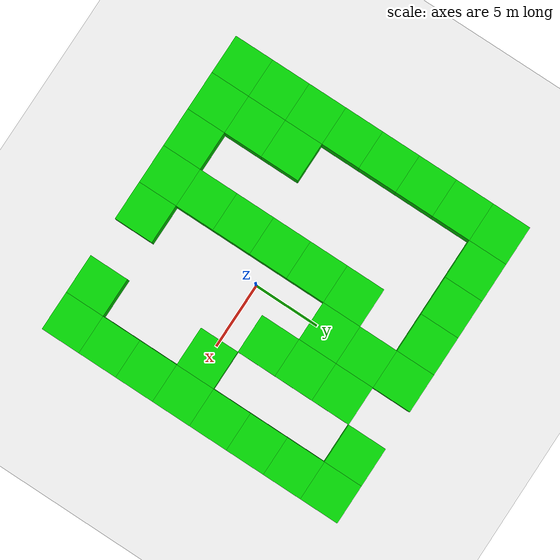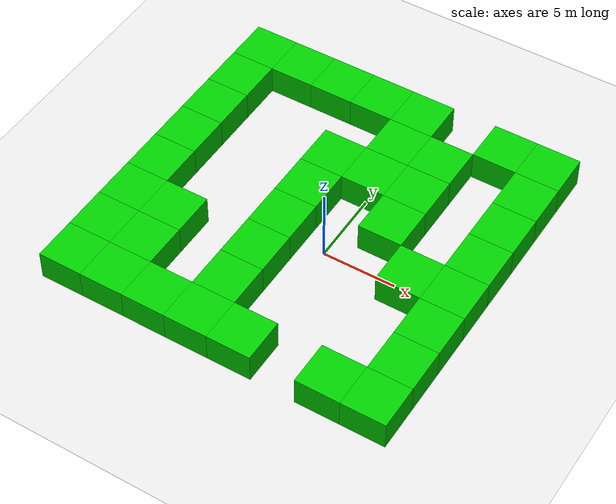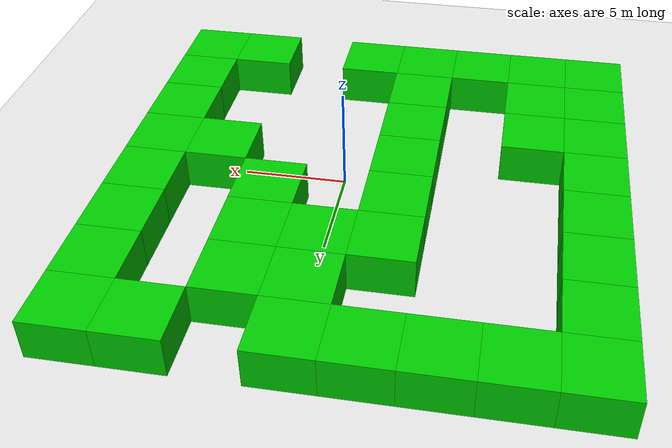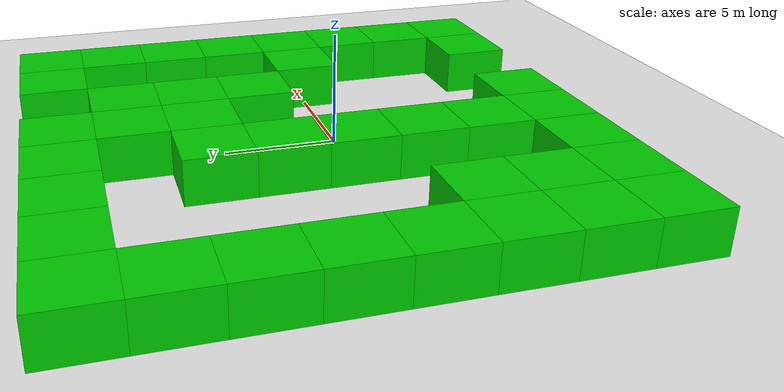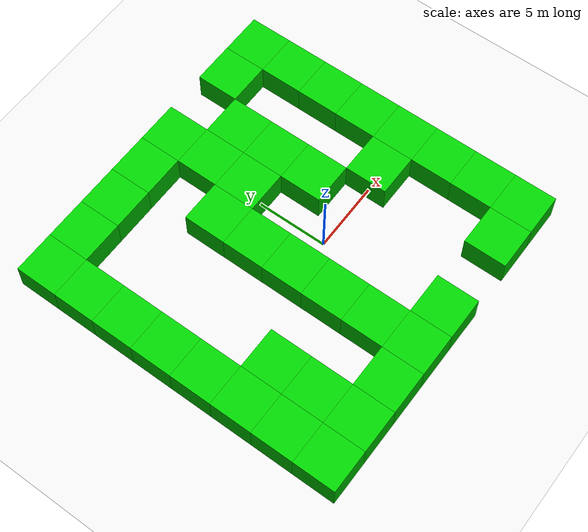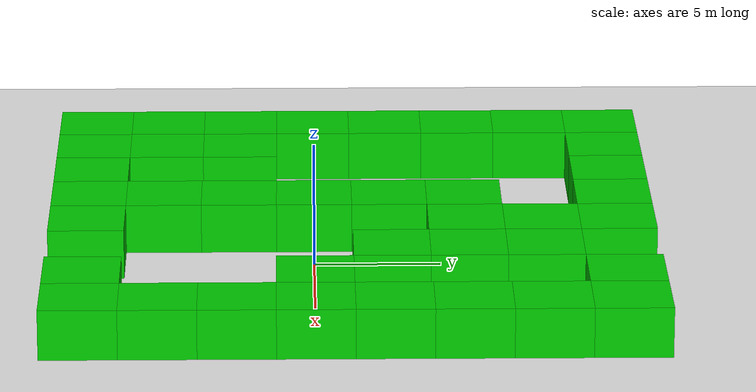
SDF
<sdf version="1.9">
 <world name="generated_maze">
  <light type="directional" name="sun">
   <pose>0 0 10 0 0 0</pose>
   <diffuse>0.8 0.8 0.8 1</diffuse>
   <specular>0.2 0.2 0.2 1</specular>
   <attenuation>
    <range>1000</range>
    <constant>0.9</constant>
    <linear>0.01</linear>
    <quadratic>0.001</quadratic>
   </attenuation>
   <direction>-0.5 0.1 -0.9</direction>
  </light>
  <model name="ground_plane">
   <static>true</static>
   <link name="link">
    <collision name="collision">
     <geometry><plane><normal>0 0 1</normal><size>300 300</size></plane></geometry>
    </collision>
    <visual name="visual">
     <geometry><plane><normal>0 0 1</normal><size>300 300</size></plane></geometry>
     <material>
      <ambient>0.9 0.9 0.9 1</ambient>
      <diffuse>0.9 0.9 0.9 1</diffuse>
      <specular>0.3 0.3 0.3 1</specular>
     </material>
    </visual>
   </link>
  </model>
  <model name="wall_0_0">
   <static>true</static>
   <pose>-12.0 12.0 1.00 0 0 0</pose>
   <link name="link">
    <collision name="collision"><geometry><box><size>3.0 3.0 2.0</size></box></geometry></collision>
    <visual name="visual">
     <geometry><box><size>3.0 3.0 2.0</size></box></geometry>
     <material>
      <ambient>0.0 0.8 0.0 1</ambient>
      <diffuse>0.0 0.8 0.0 1</diffuse>
      <specular>0.1 0.1 0.1 1</specular>
     </material>
    </visual>
   </link>
  </model>
  <model name="wall_0_1">
   <static>true</static>
   <pose>-9.0 12.0 1.00 0 0 0</pose>
   <link name="link">
    <collision name="collision"><geometry><box><size>3.0 3.0 2.0</size></box></geometry></collision>
    <visual name="visual">
     <geometry><box><size>3.0 3.0 2.0</size></box></geometry>
     <material>
      <ambient>0.0 0.8 0.0 1</ambient>
      <diffuse>0.0 0.8 0.0 1</diffuse>
      <specular>0.1 0.1 0.1 1</specular>
     </material>
    </visual>
   </link>
  </model>
  <model name="wall_0_2">
   <static>true</static>
   <pose>-6.0 12.0 1.00 0 0 0</pose>
   <link name="link">
    <collision name="collision"><geometry><box><size>3.0 3.0 2.0</size></box></geometry></collision>
    <visual name="visual">
     <geometry><box><size>3.0 3.0 2.0</size></box></geometry>
     <material>
      <ambient>0.0 0.8 0.0 1</ambient>
      <diffuse>0.0 0.8 0.0 1</diffuse>
      <specular>0.1 0.1 0.1 1</specular>
     </material>
    </visual>
   </link>
  </model>
  <model name="wall_0_3">
   <static>true</static>
   <pose>-3.0 12.0 1.00 0 0 0</pose>
   <link name="link">
    <collision name="collision"><geometry><box><size>3.0 3.0 2.0</size></box></geometry></collision>
    <visual name="visual">
     <geometry><box><size>3.0 3.0 2.0</size></box></geometry>
     <material>
      <ambient>0.0 0.8 0.0 1</ambient>
      <diffuse>0.0 0.8 0.0 1</diffuse>
      <specular>0.1 0.1 0.1 1</specular>
     </material>
    </visual>
   </link>
  </model>
  <model name="wall_0_4">
   <static>true</static>
   <pose>0.0 12.0 1.00 0 0 0</pose>
   <link name="link">
    <collision name="collision"><geometry><box><size>3.0 3.0 2.0</size></box></geometry></collision>
    <visual name="visual">
     <geometry><box><size>3.0 3.0 2.0</size></box></geometry>
     <material>
      <ambient>0.0 0.8 0.0 1</ambient>
      <diffuse>0.0 0.8 0.0 1</diffuse>
      <specular>0.1 0.1 0.1 1</specular>
     </material>
    </visual>
   </link>
  </model>
  <model name="wall_0_6">
   <static>true</static>
   <pose>6.0 12.0 1.00 0 0 0</pose>
   <link name="link">
    <collision name="collision"><geometry><box><size>3.0 3.0 2.0</size></box></geometry></collision>
    <visual name="visual">
     <geometry><box><size>3.0 3.0 2.0</size></box></geometry>
     <material>
      <ambient>0.0 0.8 0.0 1</ambient>
      <diffuse>0.0 0.8 0.0 1</diffuse>
      <specular>0.1 0.1 0.1 1</specular>
     </material>
    </visual>
   </link>
  </model>
  <model name="wall_0_7">
   <static>true</static>
   <pose>9.0 12.0 1.00 0 0 0</pose>
   <link name="link">
    <collision name="collision"><geometry><box><size>3.0 3.0 2.0</size></box></geometry></collision>
    <visual name="visual">
     <geometry><box><size>3.0 3.0 2.0</size></box></geometry>
     <material>
      <ambient>0.0 0.8 0.0 1</ambient>
      <diffuse>0.0 0.8 0.0 1</diffuse>
      <specular>0.1 0.1 0.1 1</specular>
     </material>
    </visual>
   </link>
  </model>
  <model name="wall_1_0">
   <static>true</static>
   <pose>-12.0 9.0 1.00 0 0 0</pose>
   <link name="link">
    <collision name="collision"><geometry><box><size>3.0 3.0 2.0</size></box></geometry></collision>
    <visual name="visual">
     <geometry><box><size>3.0 3.0 2.0</size></box></geometry>
     <material>
      <ambient>0.0 0.8 0.0 1</ambient>
      <diffuse>0.0 0.8 0.0 1</diffuse>
      <specular>0.1 0.1 0.1 1</specular>
     </material>
    </visual>
   </link>
  </model>
  <model name="wall_1_4">
   <static>true</static>
   <pose>0.0 9.0 1.00 0 0 0</pose>
   <link name="link">
    <collision name="collision"><geometry><box><size>3.0 3.0 2.0</size></box></geometry></collision>
    <visual name="visual">
     <geometry><box><size>3.0 3.0 2.0</size></box></geometry>
     <material>
      <ambient>0.0 0.8 0.0 1</ambient>
      <diffuse>0.0 0.8 0.0 1</diffuse>
      <specular>0.1 0.1 0.1 1</specular>
     </material>
    </visual>
   </link>
  </model>
  <model name="wall_1_5">
   <static>true</static>
   <pose>3.0 9.0 1.00 0 0 0</pose>
   <link name="link">
    <collision name="collision"><geometry><box><size>3.0 3.0 2.0</size></box></geometry></collision>
    <visual name="visual">
     <geometry><box><size>3.0 3.0 2.0</size></box></geometry>
     <material>
      <ambient>0.0 0.8 0.0 1</ambient>
      <diffuse>0.0 0.8 0.0 1</diffuse>
      <specular>0.1 0.1 0.1 1</specular>
     </material>
    </visual>
   </link>
  </model>
  <model name="wall_1_7">
   <static>true</static>
   <pose>9.0 9.0 1.00 0 0 0</pose>
   <link name="link">
    <collision name="collision"><geometry><box><size>3.0 3.0 2.0</size></box></geometry></collision>
    <visual name="visual">
     <geometry><box><size>3.0 3.0 2.0</size></box></geometry>
     <material>
      <ambient>0.0 0.8 0.0 1</ambient>
      <diffuse>0.0 0.8 0.0 1</diffuse>
      <specular>0.1 0.1 0.1 1</specular>
     </material>
    </visual>
   </link>
  </model>
  <model name="wall_2_0">
   <static>true</static>
   <pose>-12.0 6.0 1.00 0 0 0</pose>
   <link name="link">
    <collision name="collision"><geometry><box><size>3.0 3.0 2.0</size></box></geometry></collision>
    <visual name="visual">
     <geometry><box><size>3.0 3.0 2.0</size></box></geometry>
     <material>
      <ambient>0.0 0.8 0.0 1</ambient>
      <diffuse>0.0 0.8 0.0 1</diffuse>
      <specular>0.1 0.1 0.1 1</specular>
     </material>
    </visual>
   </link>
  </model>
  <model name="wall_2_3">
   <static>true</static>
   <pose>-3.0 6.0 1.00 0 0 0</pose>
   <link name="link">
    <collision name="collision"><geometry><box><size>3.0 3.0 2.0</size></box></geometry></collision>
    <visual name="visual">
     <geometry><box><size>3.0 3.0 2.0</size></box></geometry>
     <material>
      <ambient>0.0 0.8 0.0 1</ambient>
      <diffuse>0.0 0.8 0.0 1</diffuse>
      <specular>0.1 0.1 0.1 1</specular>
     </material>
    </visual>
   </link>
  </model>
  <model name="wall_2_4">
   <static>true</static>
   <pose>0.0 6.0 1.00 0 0 0</pose>
   <link name="link">
    <collision name="collision"><geometry><box><size>3.0 3.0 2.0</size></box></geometry></collision>
    <visual name="visual">
     <geometry><box><size>3.0 3.0 2.0</size></box></geometry>
     <material>
      <ambient>0.0 0.8 0.0 1</ambient>
      <diffuse>0.0 0.8 0.0 1</diffuse>
      <specular>0.1 0.1 0.1 1</specular>
     </material>
    </visual>
   </link>
  </model>
  <model name="wall_2_5">
   <static>true</static>
   <pose>3.0 6.0 1.00 0 0 0</pose>
   <link name="link">
    <collision name="collision"><geometry><box><size>3.0 3.0 2.0</size></box></geometry></collision>
    <visual name="visual">
     <geometry><box><size>3.0 3.0 2.0</size></box></geometry>
     <material>
      <ambient>0.0 0.8 0.0 1</ambient>
      <diffuse>0.0 0.8 0.0 1</diffuse>
      <specular>0.1 0.1 0.1 1</specular>
     </material>
    </visual>
   </link>
  </model>
  <model name="wall_2_7">
   <static>true</static>
   <pose>9.0 6.0 1.00 0 0 0</pose>
   <link name="link">
    <collision name="collision"><geometry><box><size>3.0 3.0 2.0</size></box></geometry></collision>
    <visual name="visual">
     <geometry><box><size>3.0 3.0 2.0</size></box></geometry>
     <material>
      <ambient>0.0 0.8 0.0 1</ambient>
      <diffuse>0.0 0.8 0.0 1</diffuse>
      <specular>0.1 0.1 0.1 1</specular>
     </material>
    </visual>
   </link>
  </model>
  <model name="wall_3_0">
   <static>true</static>
   <pose>-12.0 3.0 1.00 0 0 0</pose>
   <link name="link">
    <collision name="collision"><geometry><box><size>3.0 3.0 2.0</size></box></geometry></collision>
    <visual name="visual">
     <geometry><box><size>3.0 3.0 2.0</size></box></geometry>
     <material>
      <ambient>0.0 0.8 0.0 1</ambient>
      <diffuse>0.0 0.8 0.0 1</diffuse>
      <specular>0.1 0.1 0.1 1</specular>
     </material>
    </visual>
   </link>
  </model>
  <model name="wall_3_3">
   <static>true</static>
   <pose>-3.0 3.0 1.00 0 0 0</pose>
   <link name="link">
    <collision name="collision"><geometry><box><size>3.0 3.0 2.0</size></box></geometry></collision>
    <visual name="visual">
     <geometry><box><size>3.0 3.0 2.0</size></box></geometry>
     <material>
      <ambient>0.0 0.8 0.0 1</ambient>
      <diffuse>0.0 0.8 0.0 1</diffuse>
      <specular>0.1 0.1 0.1 1</specular>
     </material>
    </visual>
   </link>
  </model>
  <model name="wall_3_5">
   <static>true</static>
   <pose>3.0 3.0 1.00 0 0 0</pose>
   <link name="link">
    <collision name="collision"><geometry><box><size>3.0 3.0 2.0</size></box></geometry></collision>
    <visual name="visual">
     <geometry><box><size>3.0 3.0 2.0</size></box></geometry>
     <material>
      <ambient>0.0 0.8 0.0 1</ambient>
      <diffuse>0.0 0.8 0.0 1</diffuse>
      <specular>0.1 0.1 0.1 1</specular>
     </material>
    </visual>
   </link>
  </model>
  <model name="wall_3_7">
   <static>true</static>
   <pose>9.0 3.0 1.00 0 0 0</pose>
   <link name="link">
    <collision name="collision"><geometry><box><size>3.0 3.0 2.0</size></box></geometry></collision>
    <visual name="visual">
     <geometry><box><size>3.0 3.0 2.0</size></box></geometry>
     <material>
      <ambient>0.0 0.8 0.0 1</ambient>
      <diffuse>0.0 0.8 0.0 1</diffuse>
      <specular>0.1 0.1 0.1 1</specular>
     </material>
    </visual>
   </link>
  </model>
  <model name="wall_4_0">
   <static>true</static>
   <pose>-12.0 0.0 1.00 0 0 0</pose>
   <link name="link">
    <collision name="collision"><geometry><box><size>3.0 3.0 2.0</size></box></geometry></collision>
    <visual name="visual">
     <geometry><box><size>3.0 3.0 2.0</size></box></geometry>
     <material>
      <ambient>0.0 0.8 0.0 1</ambient>
      <diffuse>0.0 0.8 0.0 1</diffuse>
      <specular>0.1 0.1 0.1 1</specular>
     </material>
    </visual>
   </link>
  </model>
  <model name="wall_4_3">
   <static>true</static>
   <pose>-3.0 0.0 1.00 0 0 0</pose>
   <link name="link">
    <collision name="collision"><geometry><box><size>3.0 3.0 2.0</size></box></geometry></collision>
    <visual name="visual">
     <geometry><box><size>3.0 3.0 2.0</size></box></geometry>
     <material>
      <ambient>0.0 0.8 0.0 1</ambient>
      <diffuse>0.0 0.8 0.0 1</diffuse>
      <specular>0.1 0.1 0.1 1</specular>
     </material>
    </visual>
   </link>
  </model>
  <model name="wall_4_6">
   <static>true</static>
   <pose>6.0 0.0 1.00 0 0 0</pose>
   <link name="link">
    <collision name="collision"><geometry><box><size>3.0 3.0 2.0</size></box></geometry></collision>
    <visual name="visual">
     <geometry><box><size>3.0 3.0 2.0</size></box></geometry>
     <material>
      <ambient>0.0 0.8 0.0 1</ambient>
      <diffuse>0.0 0.8 0.0 1</diffuse>
      <specular>0.1 0.1 0.1 1</specular>
     </material>
    </visual>
   </link>
  </model>
  <model name="wall_4_7">
   <static>true</static>
   <pose>9.0 0.0 1.00 0 0 0</pose>
   <link name="link">
    <collision name="collision"><geometry><box><size>3.0 3.0 2.0</size></box></geometry></collision>
    <visual name="visual">
     <geometry><box><size>3.0 3.0 2.0</size></box></geometry>
     <material>
      <ambient>0.0 0.8 0.0 1</ambient>
      <diffuse>0.0 0.8 0.0 1</diffuse>
      <specular>0.1 0.1 0.1 1</specular>
     </material>
    </visual>
   </link>
  </model>
  <model name="wall_5_0">
   <static>true</static>
   <pose>-12.0 -3.0 1.00 0 0 0</pose>
   <link name="link">
    <collision name="collision"><geometry><box><size>3.0 3.0 2.0</size></box></geometry></collision>
    <visual name="visual">
     <geometry><box><size>3.0 3.0 2.0</size></box></geometry>
     <material>
      <ambient>0.0 0.8 0.0 1</ambient>
      <diffuse>0.0 0.8 0.0 1</diffuse>
      <specular>0.1 0.1 0.1 1</specular>
     </material>
    </visual>
   </link>
  </model>
  <model name="wall_5_1">
   <static>true</static>
   <pose>-9.0 -3.0 1.00 0 0 0</pose>
   <link name="link">
    <collision name="collision"><geometry><box><size>3.0 3.0 2.0</size></box></geometry></collision>
    <visual name="visual">
     <geometry><box><size>3.0 3.0 2.0</size></box></geometry>
     <material>
      <ambient>0.0 0.8 0.0 1</ambient>
      <diffuse>0.0 0.8 0.0 1</diffuse>
      <specular>0.1 0.1 0.1 1</specular>
     </material>
    </visual>
   </link>
  </model>
  <model name="wall_5_3">
   <static>true</static>
   <pose>-3.0 -3.0 1.00 0 0 0</pose>
   <link name="link">
    <collision name="collision"><geometry><box><size>3.0 3.0 2.0</size></box></geometry></collision>
    <visual name="visual">
     <geometry><box><size>3.0 3.0 2.0</size></box></geometry>
     <material>
      <ambient>0.0 0.8 0.0 1</ambient>
      <diffuse>0.0 0.8 0.0 1</diffuse>
      <specular>0.1 0.1 0.1 1</specular>
     </material>
    </visual>
   </link>
  </model>
  <model name="wall_5_7">
   <static>true</static>
   <pose>9.0 -3.0 1.00 0 0 0</pose>
   <link name="link">
    <collision name="collision"><geometry><box><size>3.0 3.0 2.0</size></box></geometry></collision>
    <visual name="visual">
     <geometry><box><size>3.0 3.0 2.0</size></box></geometry>
     <material>
      <ambient>0.0 0.8 0.0 1</ambient>
      <diffuse>0.0 0.8 0.0 1</diffuse>
      <specular>0.1 0.1 0.1 1</specular>
     </material>
    </visual>
   </link>
  </model>
  <model name="wall_6_0">
   <static>true</static>
   <pose>-12.0 -6.0 1.00 0 0 0</pose>
   <link name="link">
    <collision name="collision"><geometry><box><size>3.0 3.0 2.0</size></box></geometry></collision>
    <visual name="visual">
     <geometry><box><size>3.0 3.0 2.0</size></box></geometry>
     <material>
      <ambient>0.0 0.8 0.0 1</ambient>
      <diffuse>0.0 0.8 0.0 1</diffuse>
      <specular>0.1 0.1 0.1 1</specular>
     </material>
    </visual>
   </link>
  </model>
  <model name="wall_6_1">
   <static>true</static>
   <pose>-9.0 -6.0 1.00 0 0 0</pose>
   <link name="link">
    <collision name="collision"><geometry><box><size>3.0 3.0 2.0</size></box></geometry></collision>
    <visual name="visual">
     <geometry><box><size>3.0 3.0 2.0</size></box></geometry>
     <material>
      <ambient>0.0 0.8 0.0 1</ambient>
      <diffuse>0.0 0.8 0.0 1</diffuse>
      <specular>0.1 0.1 0.1 1</specular>
     </material>
    </visual>
   </link>
  </model>
  <model name="wall_6_3">
   <static>true</static>
   <pose>-3.0 -6.0 1.00 0 0 0</pose>
   <link name="link">
    <collision name="collision"><geometry><box><size>3.0 3.0 2.0</size></box></geometry></collision>
    <visual name="visual">
     <geometry><box><size>3.0 3.0 2.0</size></box></geometry>
     <material>
      <ambient>0.0 0.8 0.0 1</ambient>
      <diffuse>0.0 0.8 0.0 1</diffuse>
      <specular>0.1 0.1 0.1 1</specular>
     </material>
    </visual>
   </link>
  </model>
  <model name="wall_6_7">
   <static>true</static>
   <pose>9.0 -6.0 1.00 0 0 0</pose>
   <link name="link">
    <collision name="collision"><geometry><box><size>3.0 3.0 2.0</size></box></geometry></collision>
    <visual name="visual">
     <geometry><box><size>3.0 3.0 2.0</size></box></geometry>
     <material>
      <ambient>0.0 0.8 0.0 1</ambient>
      <diffuse>0.0 0.8 0.0 1</diffuse>
      <specular>0.1 0.1 0.1 1</specular>
     </material>
    </visual>
   </link>
  </model>
  <model name="wall_7_0">
   <static>true</static>
   <pose>-12.0 -9.0 1.00 0 0 0</pose>
   <link name="link">
    <collision name="collision"><geometry><box><size>3.0 3.0 2.0</size></box></geometry></collision>
    <visual name="visual">
     <geometry><box><size>3.0 3.0 2.0</size></box></geometry>
     <material>
      <ambient>0.0 0.8 0.0 1</ambient>
      <diffuse>0.0 0.8 0.0 1</diffuse>
      <specular>0.1 0.1 0.1 1</specular>
     </material>
    </visual>
   </link>
  </model>
  <model name="wall_7_1">
   <static>true</static>
   <pose>-9.0 -9.0 1.00 0 0 0</pose>
   <link name="link">
    <collision name="collision"><geometry><box><size>3.0 3.0 2.0</size></box></geometry></collision>
    <visual name="visual">
     <geometry><box><size>3.0 3.0 2.0</size></box></geometry>
     <material>
      <ambient>0.0 0.8 0.0 1</ambient>
      <diffuse>0.0 0.8 0.0 1</diffuse>
      <specular>0.1 0.1 0.1 1</specular>
     </material>
    </visual>
   </link>
  </model>
  <model name="wall_7_2">
   <static>true</static>
   <pose>-6.0 -9.0 1.00 0 0 0</pose>
   <link name="link">
    <collision name="collision"><geometry><box><size>3.0 3.0 2.0</size></box></geometry></collision>
    <visual name="visual">
     <geometry><box><size>3.0 3.0 2.0</size></box></geometry>
     <material>
      <ambient>0.0 0.8 0.0 1</ambient>
      <diffuse>0.0 0.8 0.0 1</diffuse>
      <specular>0.1 0.1 0.1 1</specular>
     </material>
    </visual>
   </link>
  </model>
  <model name="wall_7_3">
   <static>true</static>
   <pose>-3.0 -9.0 1.00 0 0 0</pose>
   <link name="link">
    <collision name="collision"><geometry><box><size>3.0 3.0 2.0</size></box></geometry></collision>
    <visual name="visual">
     <geometry><box><size>3.0 3.0 2.0</size></box></geometry>
     <material>
      <ambient>0.0 0.8 0.0 1</ambient>
      <diffuse>0.0 0.8 0.0 1</diffuse>
      <specular>0.1 0.1 0.1 1</specular>
     </material>
    </visual>
   </link>
  </model>
  <model name="wall_7_4">
   <static>true</static>
   <pose>0.0 -9.0 1.00 0 0 0</pose>
   <link name="link">
    <collision name="collision"><geometry><box><size>3.0 3.0 2.0</size></box></geometry></collision>
    <visual name="visual">
     <geometry><box><size>3.0 3.0 2.0</size></box></geometry>
     <material>
      <ambient>0.0 0.8 0.0 1</ambient>
      <diffuse>0.0 0.8 0.0 1</diffuse>
      <specular>0.1 0.1 0.1 1</specular>
     </material>
    </visual>
   </link>
  </model>
  <model name="wall_7_6">
   <static>true</static>
   <pose>6.0 -9.0 1.00 0 0 0</pose>
   <link name="link">
    <collision name="collision"><geometry><box><size>3.0 3.0 2.0</size></box></geometry></collision>
    <visual name="visual">
     <geometry><box><size>3.0 3.0 2.0</size></box></geometry>
     <material>
      <ambient>0.0 0.8 0.0 1</ambient>
      <diffuse>0.0 0.8 0.0 1</diffuse>
      <specular>0.1 0.1 0.1 1</specular>
     </material>
    </visual>
   </link>
  </model>
  <model name="wall_7_7">
   <static>true</static>
   <pose>9.0 -9.0 1.00 0 0 0</pose>
   <link name="link">
    <collision name="collision"><geometry><box><size>3.0 3.0 2.0</size></box></geometry></collision>
    <visual name="visual">
     <geometry><box><size>3.0 3.0 2.0</size></box></geometry>
     <material>
      <ambient>0.0 0.8 0.0 1</ambient>
      <diffuse>0.0 0.8 0.0 1</diffuse>
      <specular>0.1 0.1 0.1 1</specular>
     </material>
    </visual>
   </link>
  </model>
 </world>
</sdf>
